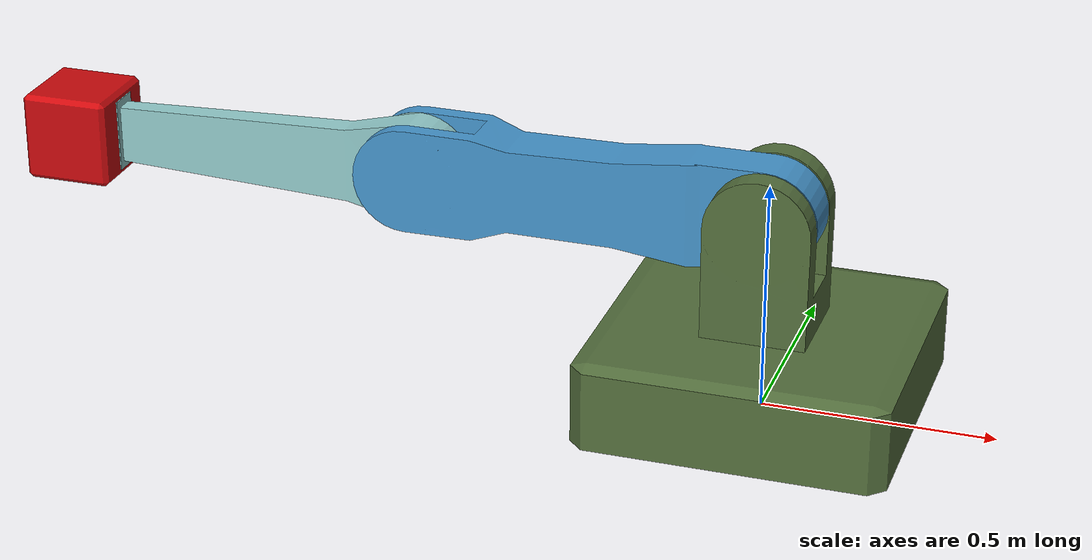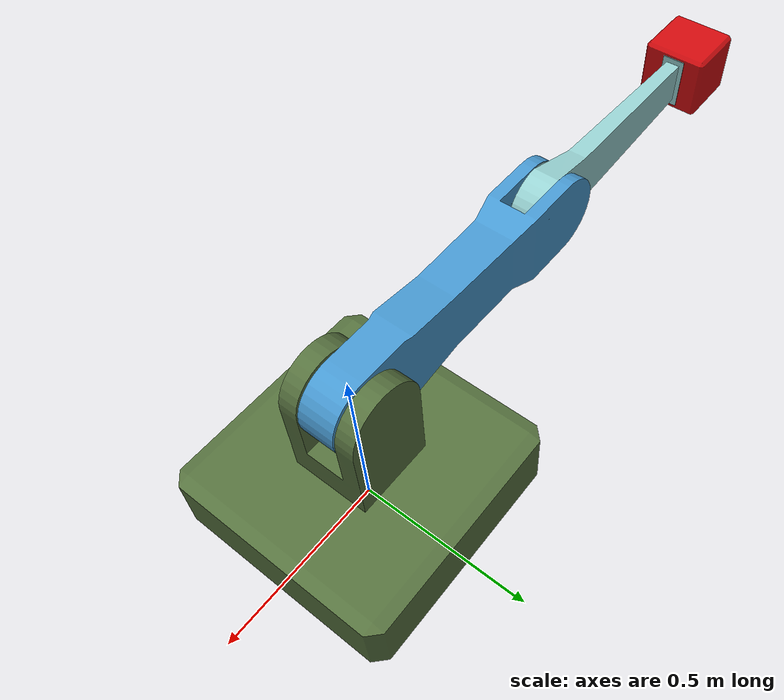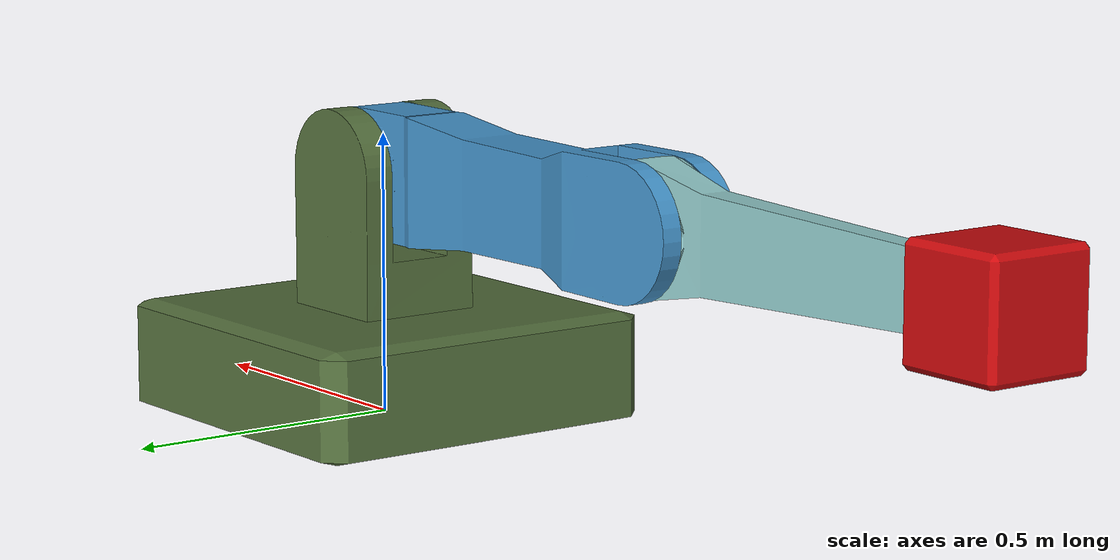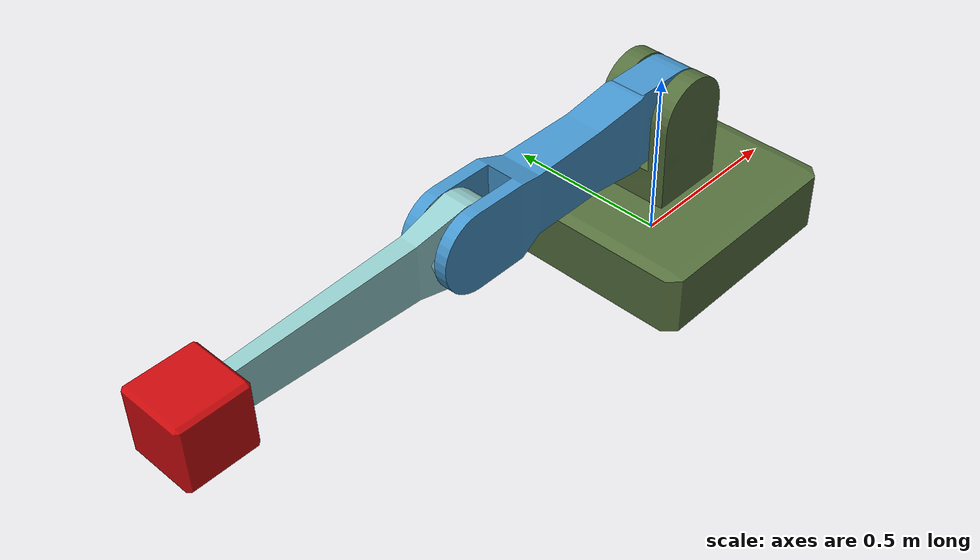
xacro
<?xml version="1.0"?>
<robot xmlns:xacro="http://www.ros.org/wiki/xacro" name="2dof_manipulator">

  <!-- XACRO ARGUMENTS & PARAMETERS               -->
  <!-- Target end-effector payload mass (kg) -->
  <xacro:arg name="payload_mass" default="1.8"/>

  <xacro:property name="mass_payload" value="$(arg payload_mass)"/>

  <!-- Nominal End-Effector Cube Dimensions (from collision box) -->
  <xacro:property name="payload_side_x" value="0.19374"/>
  <xacro:property name="payload_side_y" value="0.19374"/>
  <xacro:property name="payload_side_z" value="0.19374"/>

  <!-- Analytical Cuboid Inertia Matrix:
       Ixx = (1/12) * m * (y^2 + z^2)
       Iyy = (1/12) * m * (x^2 + z^2)
       Izz = (1/12) * m * (x^2 + y^2)
  -->
  <xacro:property name="payload_ixx"
                  value="${(1.0 / 12.0) * mass_payload * (payload_side_y * payload_side_y + payload_side_z * payload_side_z)}"/>
  <xacro:property name="payload_iyy"
                  value="${(1.0 / 12.0) * mass_payload * (payload_side_x * payload_side_x + payload_side_z * payload_side_z)}"/>
  <xacro:property name="payload_izz"
                  value="${(1.0 / 12.0) * mass_payload * (payload_side_x * payload_side_x + payload_side_y * payload_side_y)}"/>

  <!-- MATERIALS                                  -->
  <material name="Base">
    <color rgba="0.32941 0.43529 0.23922 1.00000"/>
  </material>
  <material name="Link">
    <color rgba="0.27059 0.58431 0.80000 1.00000"/>
  </material>
  <material name="Link2">
    <color rgba="0.57647 0.80000 0.80000 1.00000"/>
  </material>
  <material name="Mass">
    <color rgba="0.80000 0.03922 0.05098 1.00000"/>
  </material>

  <!-- JOINTS                                     -->
  <joint name="Link0_link_joint" type="fixed">
    <origin rpy="0.00000 0.00000 0.00000" xyz="0.00000 0.00000 0.23660"/>
    <parent link="base_link"/>
    <child link="Link0_link"/>
  </joint>

 <joint name="Link1_link_joint" type="revolute">
    <dynamics damping="0.01000"/>
    <limit lower="0.00000" upper="3.14000" effort="80.00000" velocity="200.00000"/>
    <origin rpy="0.00000 3.14000 0.00000" xyz="0.00000 0.00009 0.20022"/>
    <parent link="Link0_link"/>
    <child link="Link1_link"/>
    <axis xyz="0.00000 1.00000 0.00000"/>
  </joint>

  <joint name="Link2_link_joint" type="revolute">
    <dynamics damping="0.01000"/>
    <limit lower="-2.35500" upper="2.35500" effort="80.00000" velocity="200.00000"/>
    <origin rpy="0.00000 0.00000 0.00000" xyz="0.77198 0.00000 -0.00000"/>
    <parent link="Link1_link"/>
    <child link="Link2_link"/>
    <axis xyz="0.00000 1.00000 0.00000"/>
  </joint>

  <joint name="Mass_link_joint" type="fixed">
    <origin rpy="0.00000 -0.00000 0.00000" xyz="0.77986 -0.00009 0.00289"/>
    <parent link="Link2_link"/>
    <child link="Mass_link"/>
  </joint>

  <!-- LINKS                                      -->
  <!-- BASE LINK -->
  <link name="base_link">
    <collision name="Base_collision">
      <origin rpy="0.00000 0.00000 0.00000" xyz="0.00000 0.00000 0.09581"/>
      <geometry>
        <box size="0.66169 0.66169 0.19282"/>
      </geometry>
    </collision>
    <inertial>
      <inertia ixx="39.58394" ixy="0.00000" ixz="0.00000" iyy="39.58394" iyz="0.00000" izz="72.97132"/>
      <origin rpy="0.00000 0.00000 0.00000" xyz="0.00000 0.00000 0.09581"/>
      <mass value="1000.00000"/>
    </inertial>
    <visual name="Base">
      <material name="Base"/>
      <origin rpy="0.00000 0.00000 0.00000" xyz="0.00000 0.00000 0.09581"/>
      <geometry>
        <mesh filename="package://manipulator_simulator/models/2dof_manipulator/meshes/stl/Cube.001.stl" scale="1 1 1"/>
      </geometry>
    </visual>
  </link>

  <!-- LINK 0 -->
  <link name="Link0_link">
    <collision name="Link0_collision">
      <origin rpy="0.00000 0.00000 0.00000" xyz="0.00000 0.00000 0.13097"/>
      <geometry>
        <box size="0.21782 0.21478 0.35080"/>
      </geometry>
    </collision>
    <inertial>
      <inertia ixx="0.02820" ixy="0.00000" ixz="0.00000" iyy="0.02842" iyz="0.00000" izz="0.01560"/>
      <origin rpy="0.00000 0.00000 0.00000" xyz="0.00000 0.00000 0.13097"/>
      <mass value="2.00000"/>
    </inertial>
    <visual name="Link0">
      <material name="Base"/>
      <origin rpy="0.00000 0.00000 0.00000" xyz="0.00000 0.00000 0.00000"/>
      <geometry>
        <mesh filename="package://manipulator_simulator/models/2dof_manipulator/meshes/stl/Cube.002.stl" scale="1 1 1"/>
      </geometry>
    </visual>
  </link>

  <!-- LINK 1 -->
  <link name="Link1_link">
    <collision name="Link1_collision">
      <origin rpy="0.00000 0.00000 0.00000" xyz="0.38255 -0.00056 0.00064"/>
      <geometry>
        <box size="0.98799 0.14861 0.22659"/>
      </geometry>
    </collision>
    <inertial>
      <inertia ixx="0.00918" ixy="0.00000" ixz="0.00000" iyy="0.12843" iyz="0.00000" izz="0.12478"/>
      <origin rpy="0.00000 0.00000 0.00000" xyz="0.38255 -0.00056 0.00064"/>
      <mass value="1.50000"/>
    </inertial>
    <visual name="Link1">
      <material name="Link"/>
      <origin rpy="0.00000 0.00000 0.00000" xyz="0.00000 0.00000 -0.00000"/>
      <geometry>
        <mesh filename="package://manipulator_simulator/models/2dof_manipulator/meshes/stl/Cylinder.003.stl" scale="1 1 1"/>
      </geometry>
    </visual>
  </link>

  <!-- LINK 2 -->
  <link name="Link2_link">
    <collision name="Link2_collision">
      <origin rpy="0.00000 0.00000 0.00000" xyz="0.29498 -0.00007 -0.00057"/>
      <geometry>
        <box size="0.77523 0.07336 0.22128"/>
      </geometry>
    </collision>
    <inertial>
      <inertia ixx="0.00453" ixy="0.00000" ixz="0.00000" iyy="0.05416" iyz="0.00000" izz="0.05053"/>
      <origin rpy="0.00000 0.00000 0.00000" xyz="0.29498 -0.00007 -0.00057"/>
      <mass value="1.00000"/>
    </inertial>
    <visual name="Link2">
      <material name="Link2"/>
      <origin rpy="0.00000 0.00000 0.00000" xyz="0.00000 -0.00000 -0.00000"/>
      <geometry>
        <mesh filename="package://manipulator_simulator/models/2dof_manipulator/meshes/stl/Cylinder.004.stl" scale="1 1 1"/>
      </geometry>
    </visual>
  </link>

  <!-- END-EFFECTOR MASS LINK (PARAMETERIZED) -->
  <link name="Mass_link">
    <collision name="Mass_collision">
      <origin rpy="0.00000 0.00000 0.00000" xyz="0.0 0.0 0.0"/>
      <geometry>
        <box size="${payload_side_x} ${payload_side_y} ${payload_side_z}"/>
      </geometry>
    </collision>
    <inertial>
      <origin rpy="0.00000 0.00000 0.00000" xyz="0.0 0.0 0.0"/>
      <mass value="${mass_payload}"/>
      <inertia
        ixx="${payload_ixx}" ixy="0.0" ixz="0.0"
        iyy="${payload_iyy}" iyz="0.0"
        izz="${payload_izz}"/>
    </inertial>
    <visual name="Mass">
      <material name="Mass"/>
      <origin rpy="0.00000 0.00000 0.00000" xyz="0.0 0.0 0.0"/>
      <geometry>
        <mesh filename="package://manipulator_simulator/models/2dof_manipulator/meshes/stl/Cube.003.stl" scale="1 1 1"/>
      </geometry>
    </visual>
  </link>

  <!-- IMU FRAMES AT JOINTS                       -->
  <!-- IMU 1: Mounted at Joint 1 axis origin on Link 1 -->
  <link name="imu_joint1_link"/>
  <joint name="imu_joint1_joint" type="fixed">
    <parent link="Link1_link"/>
    <child link="imu_joint1_link"/>
    <origin xyz="0.0 0.0 0.0" rpy="0 0 0"/>
  </joint>

  <!-- IMU 2: Mounted at Joint 2 axis origin on Link 2 -->
  <link name="imu_joint2_link"/>
  <joint name="imu_joint2_joint" type="fixed">
    <parent link="Link2_link"/>
    <child link="imu_joint2_link"/>
    <origin xyz="0.0 0.0 0.0" rpy="0 0 0"/>
  </joint>

  <!-- ROS 2 CONTROL HARDWARE INTERFACES          -->
  <ros2_control name="IgnitionSystem" type="system">
    <hardware>
      <plugin>ign_ros2_control/IgnitionSystem</plugin>
    </hardware>

    <joint name="Link1_link_joint">
      <command_interface name="effort">
        <param name="min">-80.0</param>
        <param name="max">80.0</param>
      </command_interface>
      <state_interface name="position"/>
      <state_interface name="velocity"/>
    </joint>

    <joint name="Link2_link_joint">
      <command_interface name="effort">
        <param name="min">-80.0</param>
        <param name="max">80.0</param>
      </command_interface>
      <state_interface name="position"/>
      <state_interface name="velocity"/>
    </joint>
  </ros2_control>

  <!-- IGNITION ROS 2 CONTROL GAZEBO PLUGIN       -->
  <gazebo>
    <plugin
      filename="ign_ros2_control-system"
      name="ign_ros2_control::IgnitionROS2ControlPlugin">
      <parameters>$(find manipulator_simulator)/config/manipulator_controllers.yaml</parameters>
    </plugin>
  </gazebo>

  <!-- GAZEBO IMU SENSORS AT JOINTS               -->
  <!-- IMU on Joint 1 (Measures Link 1 angular rate & orientation) -->
  <gazebo reference="imu_joint1_link">
    <sensor name="imu_joint1_sensor" type="imu">
      <always_on>true</always_on>
      <update_rate>100</update_rate>
      <topic>/imu/joint1</topic>
      <imu>
        <enable_orientation>1</enable_orientation>
        <angular_velocity>
          <x>
            <noise type="gaussian">
              <mean>0.0</mean>
              <stddev>0.2</stddev>
              <bias_mean>0.0005</bias_mean>
              <bias_stddev>0.001</bias_stddev>
            </noise>
          </x>
          <y>
            <noise type="gaussian">
              <mean>0.0</mean>
              <stddev>0.2</stddev>
              <bias_mean>0.0005</bias_mean>
              <bias_stddev>0.001</bias_stddev>
            </noise>
          </y>
          <z>
            <noise type="gaussian">
              <mean>0.0</mean>
              <stddev>0.2</stddev>
              <bias_mean>0.001</bias_mean>
              <bias_stddev>0.001</bias_stddev>
            </noise>
          </z>
        </angular_velocity>
        <linear_acceleration>
          <x>
            <noise type="gaussian">
              <mean>0.0</mean>
              <stddev>0.015</stddev>
              <bias_mean>0.001</bias_mean>
              <bias_stddev>0.005</bias_stddev>
            </noise>
          </x>
          <y>
            <noise type="gaussian">
              <mean>0.0</mean>
              <stddev>0.015</stddev>
              <bias_mean>0.001</bias_mean>
              <bias_stddev>0.005</bias_stddev>
            </noise>
          </y>
          <z>
            <noise type="gaussian">
              <mean>0.0</mean>
              <stddev>0.015</stddev>
              <bias_mean>0.001</bias_mean>
              <bias_stddev>0.005</bias_stddev>
            </noise>
          </z>
        </linear_acceleration>
      </imu>
    </sensor>
  </gazebo>

  <!-- IMU on Joint 2 (Measures Link 2 angular rate & orientation) -->
  <gazebo reference="imu_joint2_link">
    <sensor name="imu_joint2_sensor" type="imu">
      <always_on>true</always_on>
      <update_rate>100</update_rate>
      <topic>/imu/joint2</topic>
      <imu>
        <enable_orientation>1</enable_orientation>
        <angular_velocity>
          <x>
            <noise type="gaussian">
              <mean>0.0</mean>
              <stddev>0.2</stddev>
              <bias_mean>0.0005</bias_mean>
              <bias_stddev>0.001</bias_stddev>
            </noise>
          </x>
          <y>
            <noise type="gaussian">
              <mean>0.0</mean>
              <stddev>0.2</stddev>
              <bias_mean>0.0005</bias_mean>
              <bias_stddev>0.001</bias_stddev>
            </noise>
          </y>
          <z>
            <noise type="gaussian">
              <mean>0.0</mean>
              <stddev>0.2</stddev>
              <bias_mean>0.001</bias_mean>
              <bias_stddev>0.001</bias_stddev>
            </noise>
          </z>
        </angular_velocity>
        <linear_acceleration>
          <x>
            <noise type="gaussian">
              <mean>0.0</mean>
              <stddev>0.015</stddev>
              <bias_mean>0.001</bias_mean>
              <bias_stddev>0.005</bias_stddev>
            </noise>
          </x>
          <y>
            <noise type="gaussian">
              <mean>0.0</mean>
              <stddev>0.015</stddev>
              <bias_mean>0.001</bias_mean>
              <bias_stddev>0.005</bias_stddev>
            </noise>
          </y>
          <z>
            <noise type="gaussian">
              <mean>0.0</mean>
              <stddev>0.015</stddev>
              <bias_mean>0.001</bias_mean>
              <bias_stddev>0.005</bias_stddev>
            </noise>
          </z>
        </linear_acceleration>
      </imu>
    </sensor>
  </gazebo>

  <!-- FORCE / TORQUE SENSORS                     -->
  <gazebo reference="Link1_link_joint">
    <sensor name="joint_1_torque_sensor" type="force_torque">
      <always_on>true</always_on>
      <update_rate>100</update_rate>
      <topic>/FT_Sensor/joint1</topic>
      <force_torque>
        <frame>child</frame>
        <measure_direction>child_to_parent</measure_direction>
      </force_torque>
      <noise type="gaussian">
        <mean>0.0</mean>
        <stddev>0.09</stddev>
      </noise>
    </sensor>
  </gazebo>

  <gazebo reference="Link2_link_joint">
    <sensor name="joint_2_torque_sensor" type="force_torque">
      <always_on>true</always_on>
      <update_rate>100</update_rate>
      <topic>/FT_Sensor/joint2</topic>
      <force_torque>
        <frame>child</frame>
        <measure_direction>child_to_parent</measure_direction>
      </force_torque>
      <noise type="gaussian">
        <mean>0.0</mean>
        <stddev>0.09</stddev>
      </noise>
    </sensor>
  </gazebo>

</robot>
